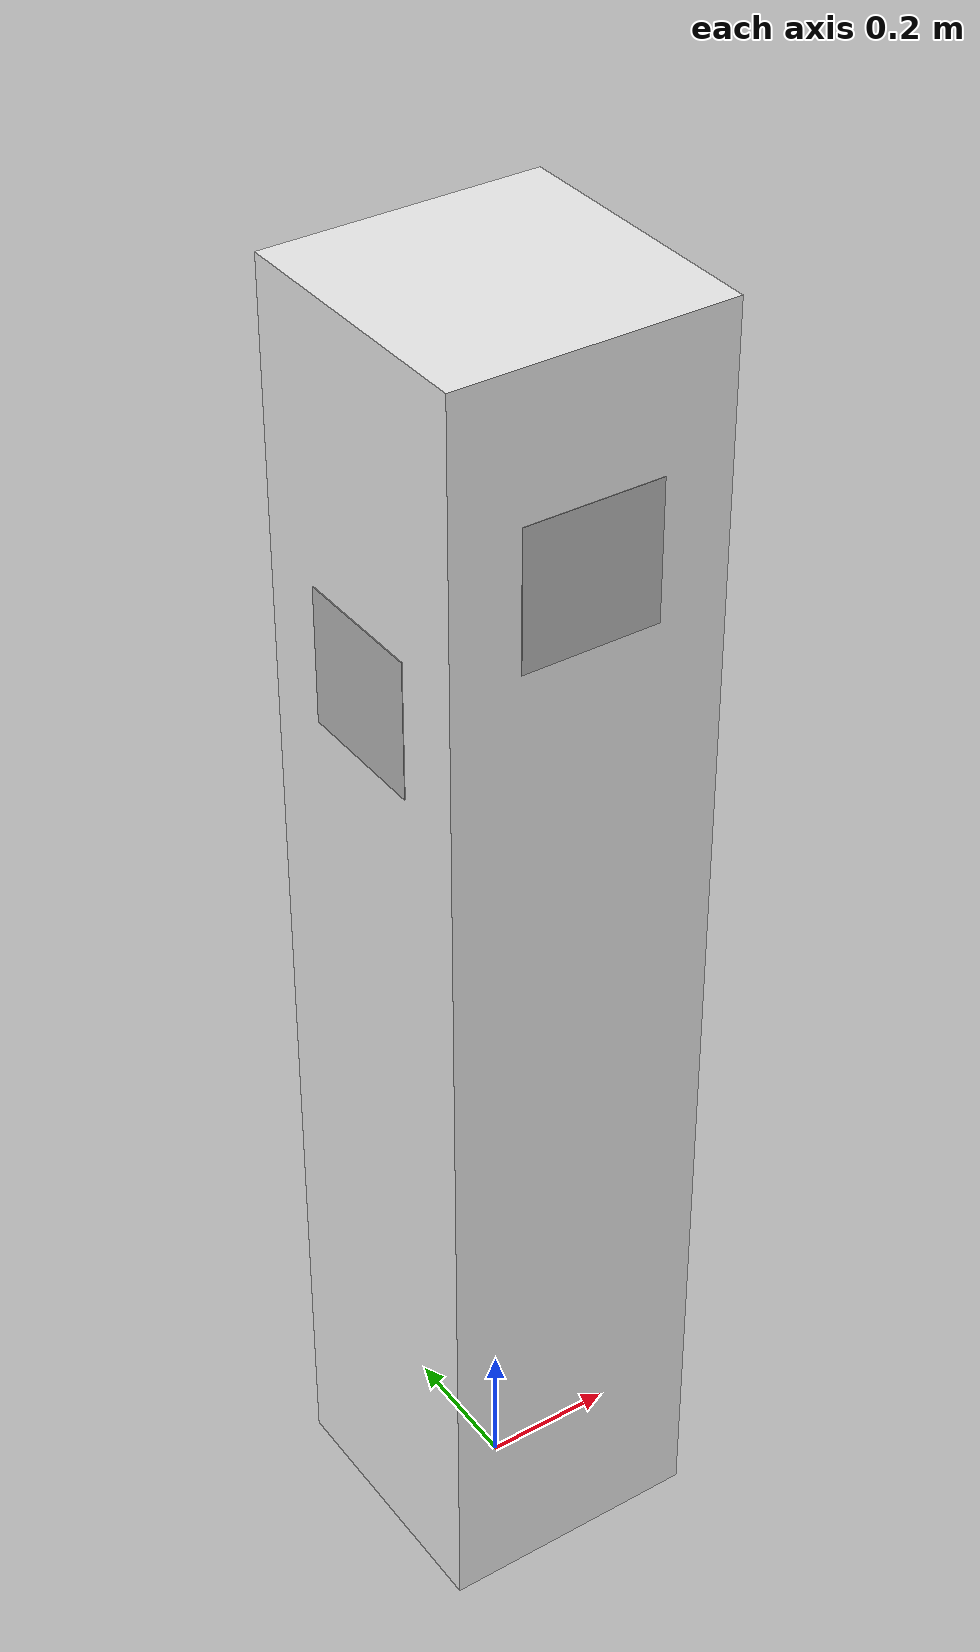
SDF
<?xml version="1.0"?>
<sdf version="1.4">

    <model name="Predio">
        <static>true</static>
        <link name="house">
        <pose> 0 0 1 0 0 0 </pose>

            <collision name="collision">
                <geometry>
                    <box>
                        <size> 0.4  0.4  2 </size>
                    </box>
                </geometry>

            </collision>

            <visual  name="visual">
                <geometry>
                    <box>
                        <size> 0.4  0.4  2</size>
                    </box>
                </geometry>

                <material>
                    <script>
                       <uri>file://media/materials/scripts/gazebo.material
                       </uri>
                        <name>Gazebo/White</name>
                    </script>
                </material>
            </visual>
        </link>

        <link name="qr1p">
            <pose> -0.201 0 1.5 0 1.57079632679 0 </pose>
                <collision name="collision">
                    <geometry>
                        <box>
                            <size> 0.2  0.2  0.00 </size>
                        </box>
                    </geometry>

                </collision>

                <visual  name="visual">
                    <geometry>
                        <box>
                            <size> 0.2  0.2  0.001</size>
                        </box>
                    </geometry>

                    <material>
                        <script>
                            <uri>model://predio/materials/scripts/</uri>
                            <uri>model://predio/materials/textures/</uri>
                            <name>DroneSim/qr1p</name>
                        </script>
                    </material>
                </visual>
        </link>

        <link name="qr2p">
            <pose> 0 0.201 1.2 -4.71238898038 0 0 </pose>
                <collision name="collision">
                    <geometry>
                        <box>
                            <size> 0.2  0.2  0.00 </size>
                        </box>
                    </geometry>

                </collision>

                <visual  name="visual">
                    <geometry>
                        <box>
                            <size> 0.2  0.2  0.001</size>
                        </box>
                    </geometry>

                    <material>
                        <script>
                            <uri>model://predio/materials/scripts/</uri>
                            <uri>model://predio/materials/textures/</uri>
                            <name>DroneSim/qr2p</name>
                        </script>
                    </material>
                </visual>
        </link>

        <link name="qr3p">
            <pose> 0 0.201 1.7 -4.71238898038 0 0 </pose>
                <collision name="collision">
                    <geometry>
                        <box>
                            <size> 0.2  0.2  0.00 </size>
                        </box>
                    </geometry>

                </collision>

                <visual  name="visual">
                    <geometry>
                        <box>
                            <size> 0.2  0.2  0.001</size>
                        </box>
                    </geometry>

                    <material>
                        <script>
                            <uri>model://predio/materials/scripts/</uri>
                            <uri>model://predio/materials/textures/</uri>
                            <name>DroneSim/qr3p</name>
                        </script>
                    </material>
                </visual>
        </link>

        <link name="qr4p">
            <pose> 0 -0.201 1.7 -4.71238898038 0 0 </pose>
                <collision name="collision">
                    <geometry>
                        <box>
                            <size> 0.2  0.2  0.00 </size>
                        </box>
                    </geometry>

                </collision>

                <visual  name="visual">
                    <geometry>
                        <box>
                            <size> 0.2  0.2  0.001</size>
                        </box>
                    </geometry>

                    <material>
                        <script>
                            <uri>model://predio/materials/scripts/</uri>
                            <uri>model://predio/materials/textures/</uri>
                            <name>DroneSim/qr4p</name>
                        </script>
                    </material>
                </visual>
         </link>

    </model>
</sdf>
